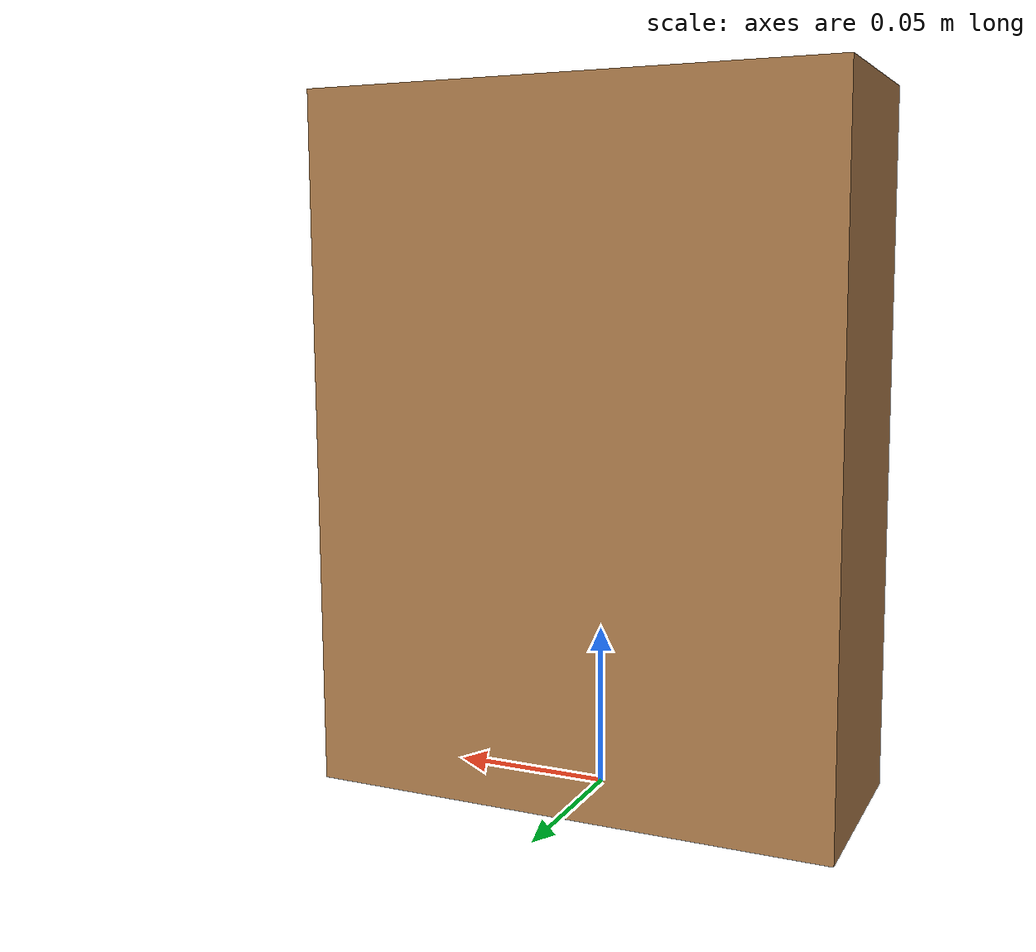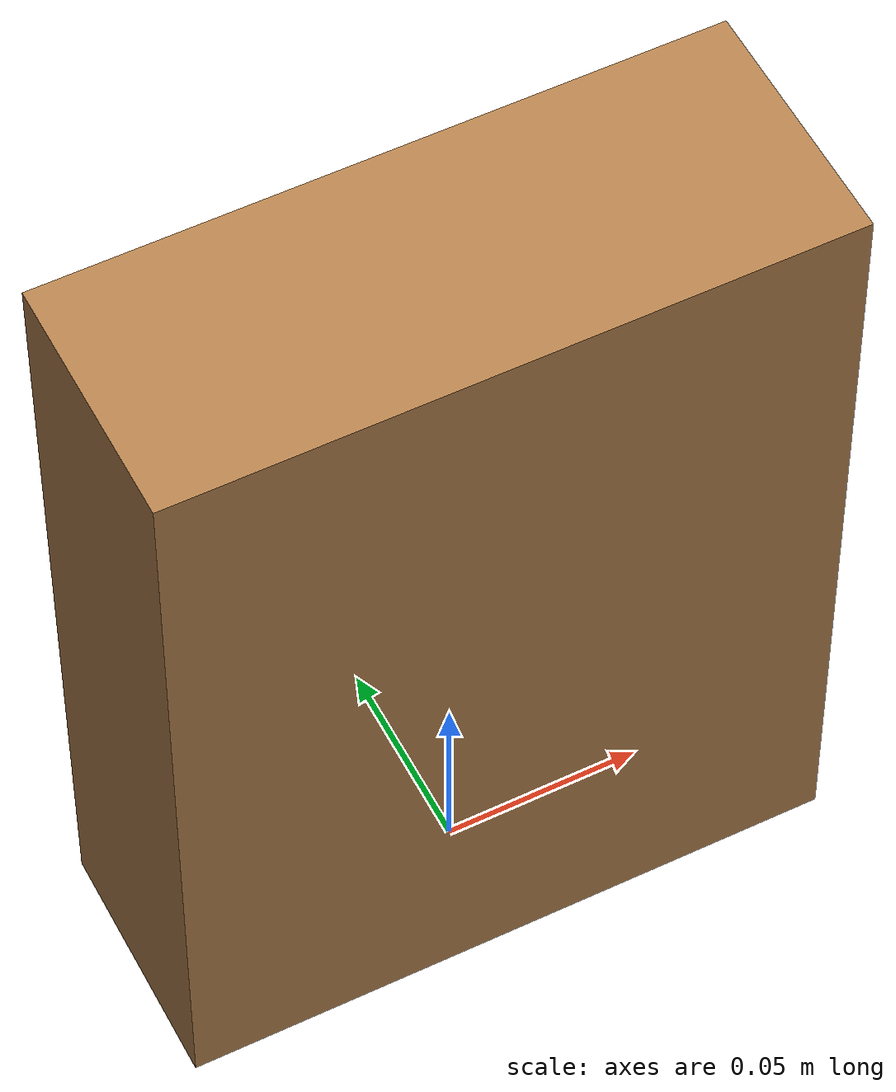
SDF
<?xml version="1.0"?>
<sdf version="1.4">
    <model name="cheezits">
        <link name="link_1">
            <pose>0 0 0.10795 0 0 0</pose>
            <gravity>true</gravity>
            <inertial>
                <pose>0 0 0 0 0 0</pose>
                <inertia>
                    <ixx>0.0042204216666666666</ixx>
                    <ixy>0</ixy>
                    <ixz>0</ixz>
                    <iyy>0.006155901666666667</iyy>
                    <iyz>0</iyz>
                    <izz>0.002607521666666666</izz>
                </inertia>
                <mass>2</mass>
            </inertial>
            <visual name="visual">
                <cast_shadows>0</cast_shadows>
                <geometry>
                    <box>
                        <size>0.1651 0.0635 0.2159</size>
                    </box>
                </geometry>
                <material>
                    <script>
                        <uri>file://media/materials/scripts/gazebo.material</uri>
                        <uri>file://media/materials/scripts/gazebo.material</uri>
                        <name>Gazebo/Wood</name>
                    </script>
                </material>
            </visual>
            <collision name="box_collision">
                <geometry>
                    <box>
                        <size>0.1651 0.0635 0.2159</size>
                    </box>
                </geometry>
                <surface>
                    <friction>
                        <ode>
                            <mu>0.2</mu>
                            <mu2>0.2</mu2>
                        </ode>
                    </friction>
                </surface>
            </collision>
        </link>
        <plugin name="position_2d" filename="libposition_2d_plugin.so">
            <linkName>link_1</linkName>
            <kP_pos>50</kP_pos>
            <kI_pos>0.0</kI_pos>
            <kD_pos>0.0</kD_pos>
            <max_vel>1.0</max_vel>
            <kP_rot>20</kP_rot>
            <kI_rot>0.0</kI_rot>
            <kD_rot>0.0</kD_rot>
            <max_torque>0.1</max_torque>
            <kP_vel>100.0</kP_vel>
            <kI_vel>0.0</kI_vel>
            <kD_vel>0.0</kD_vel>
            <max_force>2.0</max_force>
        </plugin>
    </model>
</sdf>
